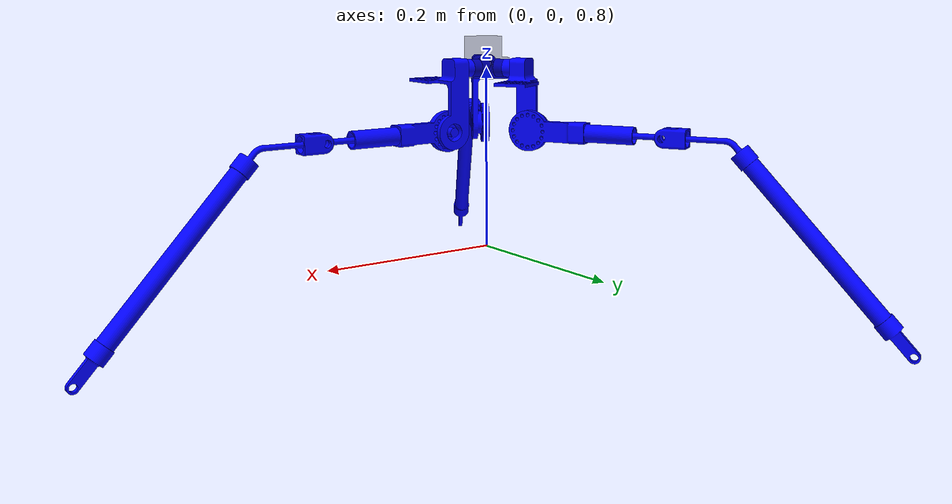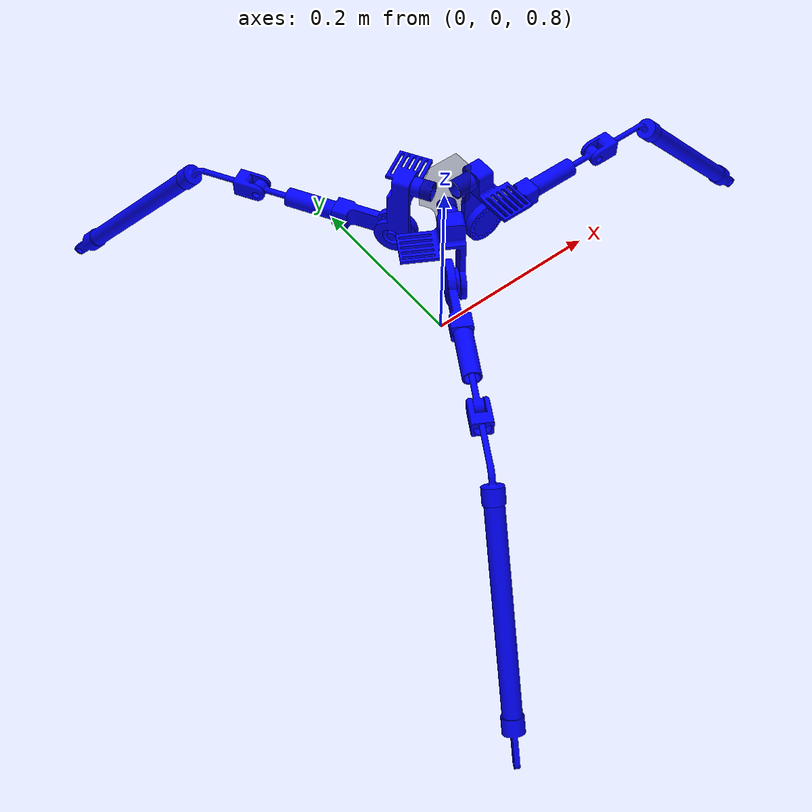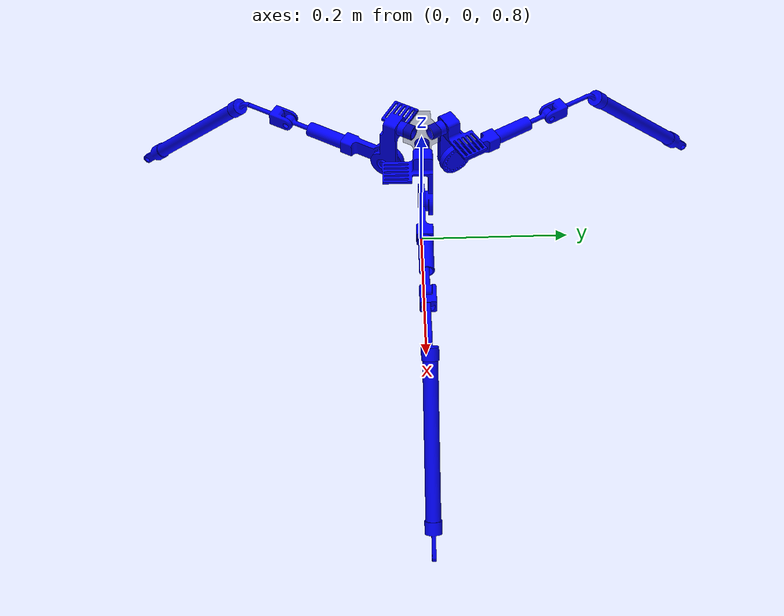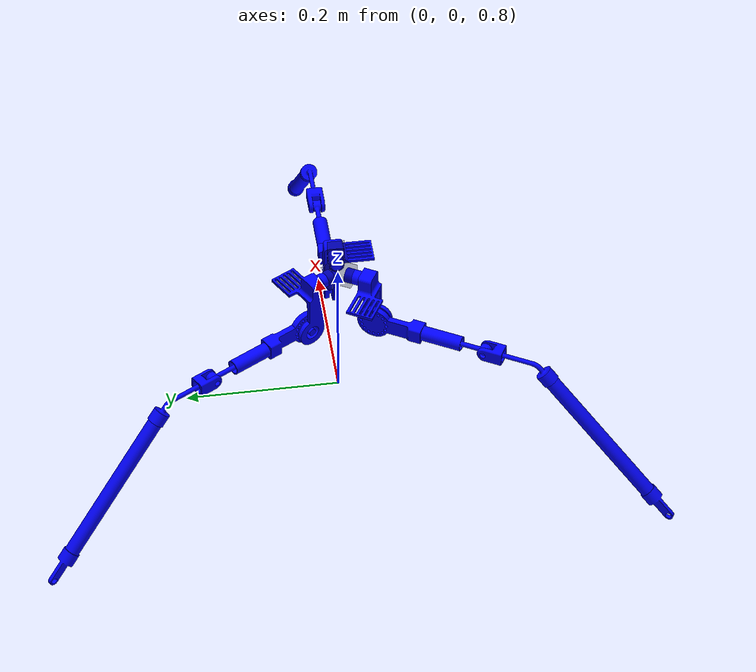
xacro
<?xml version="1.0"?>
<!-- Revolute-Revolute Manipulator -->
<robot name="rrbot" xmlns:xacro="http://www.ros.org/wiki/xacro">

  <!-- Constants for robot dimensions -->
  <xacro:property name="PI" value="3.1415926535897931"/>
  <xacro:property name="mass" value="1" /> <!-- arbitrary value for mass -->
  <xacro:property name="width" value="0.1" /> <!-- Square dimensions (widthxwidth) of beams -->
  <xacro:property name="height1" value="2" /> <!-- Link 1 -->
  <xacro:property name="height2" value="1" /> <!-- Link 2 -->
  <xacro:property name="height3" value="1" /> <!-- Link 3 -->
  <xacro:property name="camera_link" value="0.05" /> <!-- Size of square 'camera' box -->
  <xacro:property name="axel_offset" value="0.05" /> <!-- Space btw top of beam and the each joint -->

  <!-- Import all Gazebo-customization elements, including Gazebo colors -->
  <xacro:include filename="$(find rrbot_description)/urdf/rrbot.gazebo" />
  <!-- Import Rviz colors -->
  <xacro:include filename="$(find rrbot_description)/urdf/materials.xacro" />

  <!-- measurements in 10 cm -->

<!--Links @NEED TO ADD MASS PROPERTIES-->
  <!-- BASE LINK -->

  <!--HEAD LINK  -->
  <link name="world"/>

  <link name = "hipJoint">
    <visual>
      <geometry>
        <mesh filename="package://rrbot_description/meshes/singleleghipjoint.dae"/>
      </geometry>
      <material name ="black" />
      <origin xyz="0 0 0" rpy="0 0 0"/>
    </visual>
    <collision>
      <geometry>
        <mesh filename="package://rrbot_description/meshes/singleleghipjoint.dae"/>
      </geometry>
      <origin xyz="0 0 0" rpy="0 0 0"/>
    </collision>
  </link>

  <joint name="fixed" type="fixed">
    <parent link="world"/>
    <child link="hipJoint"/>
    <origin xyz="0 0 1" rpy="0 0 0"/>
  </joint>

<xacro:macro name="leg" params="prefix reflect">

  <!-- PART 6 FOR 3 PORTIONS -->

  <!-- PART 5 FOR 3 PORTIONS-->

  <!-- PART 4 FOR 3 PORTIONS -->

  <!-- PART 2 FOR 3 PORTIONS -->
  <link name="${prefix}_pipebetweenhipandmotormountingbracket">
    <visual>
      <geometry>
        <mesh filename="package://rrbot_description/meshes/pipebetweenhipandmotormountingbracket.dae"/>
      </geometry>
      <material name = "blue" />
      <origin xyz="0 0 0" rpy="0 0 ${-PI/2}"/>
    </visual>
    <collision>
      <geometry>
        <mesh filename="package://rrbot_description/meshes/pipebetweenhipandmotormountingbracket.dae"/>
      </geometry>
      <origin xyz="0 0 0" rpy="0 0 ${-PI/2}"/>
    </collision>
  </link>

  <link name="${prefix}_motormountingbracket_fixed">
    <visual>
      <geometry>
        <mesh filename="package://rrbot_description/meshes/motormountingbracket_fixed.dae"/>
      </geometry>
      <material name = "blue" />
      <origin xyz="0 0 0" rpy="0 0 0"/>
    </visual>
    <collision>
      <geometry>
        <mesh filename="package://rrbot_description/meshes/motormountingbracket_fixed.dae"/>
      </geometry>
      <origin xyz="0 0 0" rpy="0 0 0"/>
    </collision>
  </link>

  <link name="${prefix}_upper_leg_bracket">
    <visual>
      <geometry>
        <mesh filename="package://rrbot_description/meshes/upper_leg_bracket.dae"/>
      </geometry>
      <material name = "blue" />
      <origin xyz="0 0 0" rpy="0 0 ${PI/2}"/>
    </visual>
    <collision>
      <geometry>
        <mesh filename="package://rrbot_description/meshes/upper_leg_bracket.dae"/>
      </geometry>
      <origin xyz="0 0 0" rpy="0 0 ${PI/2}"/>
    </collision>
  </link>

    <link name="${prefix}_upper_leg">
    <visual>
      <geometry>
        <mesh filename="package://rrbot_description/meshes/upper_leg.dae"/>
      </geometry>
      <material name = "blue" />
      <origin xyz="0 0 0" rpy="0 0 ${-PI/2}"/>
    </visual>
    <collision>
      <geometry>
        <mesh filename="package://rrbot_description/meshes/upper_leg.dae"/>
      </geometry>
      <origin xyz="0 0 0" rpy="0 0 ${-PI/2}"/>
    </collision>
  </link>

  <link name="${prefix}_eyeJoint">
    <visual>
      <geometry>
        <mesh filename="package://rrbot_description/meshes/eye_joint.dae"/>
      </geometry>
      <material name = "blue" />
      <origin xyz="0 0 0" rpy="0 0 ${PI/2}"/>
    </visual>
    <collision>
      <geometry>
        <mesh filename="package://rrbot_description/meshes/eye_joint.dae"/>
      </geometry>
      <origin xyz="0 0 0" rpy="0 0 ${PI/2}"/>
    </collision>
  </link>

  <link name="${prefix}_sphericalJointMiddleLink">
    <visual>
      <geometry>
        <mesh filename="package://rrbot_description/meshes/spherical_joint_middle_piece.dae"/>
      </geometry>
      <material name = "blue" />
      <origin xyz="0 0 0" rpy="0 0 ${PI/2}"/>
    </visual>
    <collision>
      <geometry>
        <mesh filename="package://rrbot_description/meshes/spherical_joint_middle_piece.dae"/>
      </geometry>
      <origin xyz="0 0 0" rpy="0 0 ${PI/2}"/>
    </collision>
  </link>

  <link name="${prefix}_bendElbow">
    <visual>
      <geometry>
        <mesh filename="package://rrbot_description/meshes/elbow_bend.dae"/>
      </geometry>
      <material name = "blue" />
      <origin xyz="0 0 0" rpy="0 0 0"/>
    </visual>
    <collision>
      <geometry>
        <mesh filename="package://rrbot_description/meshes/elbow_bend.dae"/>
      </geometry>
      <origin xyz="0 0 0" rpy="0 0 0"/>
    </collision>
  </link>

  <link name="${prefix}_lowerLeg">
    <visual>
      <geometry>
        <mesh filename="package://rrbot_description/meshes/lower_leg.dae"/>
      </geometry>
      <material name = "blue" />
      <origin xyz="0 0 0" rpy="0 0 ${-PI/2}"/>
    </visual>
    <collision>
      <geometry>
        <mesh filename="package://rrbot_description/meshes/lower_leg.dae"/>
      </geometry>
      <origin xyz="0 0 0" rpy="0 0 ${-PI/2}"/>
    </collision>
  </link>

  <link name="${prefix}_footBracket">
    <visual>
      <geometry>
        <mesh filename="package://rrbot_description/meshes/foot_bracket.dae"/>
      </geometry>
      <material name = "blue" />
      <origin xyz="0 0 0" rpy="0 0 0"/>
    </visual>
    <collision>
      <geometry>
        <mesh filename="package://rrbot_description/meshes/foot_bracket.dae"/>
      </geometry>
      <origin xyz="0 0 0" rpy="0 0 0"/>
    </collision>
  </link>

  <!-- JOINTS -->

  <!-- FROM PART1 TO HEAD_LINK -->
  <joint name="${prefix}_hip_to_pipeBetweenHipAndMotorMountingBracket" type="fixed">
    <parent link="hipJoint"/>
    <child link="${prefix}_pipebetweenhipandmotormountingbracket"/>
    <origin xyz="${0.01176*cos(reflect*120*PI/180)} ${0.01176*sin(reflect*120*PI/180)}  0" rpy="0 0 ${reflect*120*PI/180}"/>
  </joint>

  <joint name="${prefix}_pipebetweenhipandmotormountingbracket_to_motor" type="fixed">
    <parent link="${prefix}_pipebetweenhipandmotormountingbracket"/>
    <child link="${prefix}_motormountingbracket_fixed"/>
    <origin xyz="0.03073 0 0" rpy="${-PI/2} 0 0"/>
  </joint>

  <joint name="${prefix}_motorMoutingBracket_to_upperLegBracket" type="revolute">
    <axis xyz="0 0 1"/>
    <limit effort="1000.0" lower="${-PI/2}" upper="${PI/2}" velocity="0"/>
    <origin xyz="0.00864 0.06680 0.01267" rpy="0 0 0"/>
    <parent link="${prefix}_motormountingbracket_fixed"/>
    <child link="${prefix}_upper_leg_bracket"/>
  </joint>

  <joint name="${prefix}_upperLegBracket_to_upperLink" type="fixed">
    <parent link="${prefix}_upper_leg_bracket"/>
    <child link="${prefix}_upper_leg"/>
    <origin xyz="0.05166 0 -0.01150" rpy="0 0 0"/>
  </joint>

  <joint name="${prefix}_upperLeg_to_eyeJoint" type="revolute">
    <axis xyz="1 0 0"/>
    <limit effort="1000.0" lower="${-PI}" upper="${PI}" velocity="0"/>
    <origin xyz="0.09885 0 0" rpy="0 0 0"/>
    <parent link="${prefix}_upper_leg"/>
    <child link="${prefix}_eyeJoint"/>
  </joint>

  <joint name="${prefix}_eyeJoint_to_sphericalJointMiddleLink" type="revolute">
    <axis xyz="0 0 1"/>
    <limit effort="1000.0" lower="${-PI/2}" upper="${PI/2}" velocity="0"/>
    <origin xyz="0 0 0" rpy="0 0 0"/>
    <parent link="${prefix}_eyeJoint"/>
    <child link="${prefix}_sphericalJointMiddleLink"/>
  </joint>

  <joint name="${prefix}_sphericalJointMiddleLink_to_bendElbow" type="revolute">
    <axis xyz="1 0 0"/>
    <limit effort="1000.0" lower="${-PI}" upper="${PI}" velocity="0"/>
    <origin xyz="0.01916 0 0" rpy="0 0 0"/>
    <parent link="${prefix}_sphericalJointMiddleLink"/>
    <child link="${prefix}_bendElbow"/>
  </joint>

  <joint name="${prefix}_bendElbow_to_lowerLeg" type="fixed">
    <parent link="${prefix}_bendElbow"/>
    <child link="${prefix}_lowerLeg"/>
    <origin xyz="0.06170 0.01192 0" rpy="0 0 ${47*PI/180}"/>
  </joint>

  <joint name="${prefix}_lowerLeg_footBracket" type="fixed">
    <parent link="${prefix}_lowerLeg"/>
    <child link="${prefix}_footBracket"/>
    <origin xyz="0.26032 0 0" rpy="0 0 0"/>
  </joint>

  <!-- GAZEBO PLUGIN -->
  <gazebo>
    <plugin name="gazebo_ros_control" filename="libgazebo_ros_control.so">
      <robotNamespace>/goatleg</robotNamespace>
    </plugin>
  </gazebo>
</xacro:macro>
<xacro:leg prefix="leg1" reflect="0" />
<xacro:leg prefix="leg2" reflect="1" />
<xacro:leg prefix="leg3" reflect="2" />

</robot>

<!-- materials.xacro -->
<robot>

  <material name="black">
    <color rgba="0.0 0.0 0.0 0.3"/>
  </material>

  <material name="blue">
    <color rgba="0.0 0.0 1.0 1.0"/>
  </material>

  <material name="green">
    <color rgba="0.0 0.8 0.0 1.0"/>
  </material>

  <material name="grey">
    <color rgba="0.2 0.2 0.2 1.0"/>
  </material>

  <material name="orange">
    <color rgba="${255/255} ${108/255} ${10/255} 1.0"/>
  </material>

  <material name="brown">
    <color rgba="${222/255} ${207/255} ${195/255} 1.0"/>
  </material>

  <material name="red">
    <color rgba="0.8 0.0 0.0 1.0"/>
  </material>

  <material name="white">
    <color rgba="1.0 1.0 1.0 1.0"/>
  </material>

</robot>
